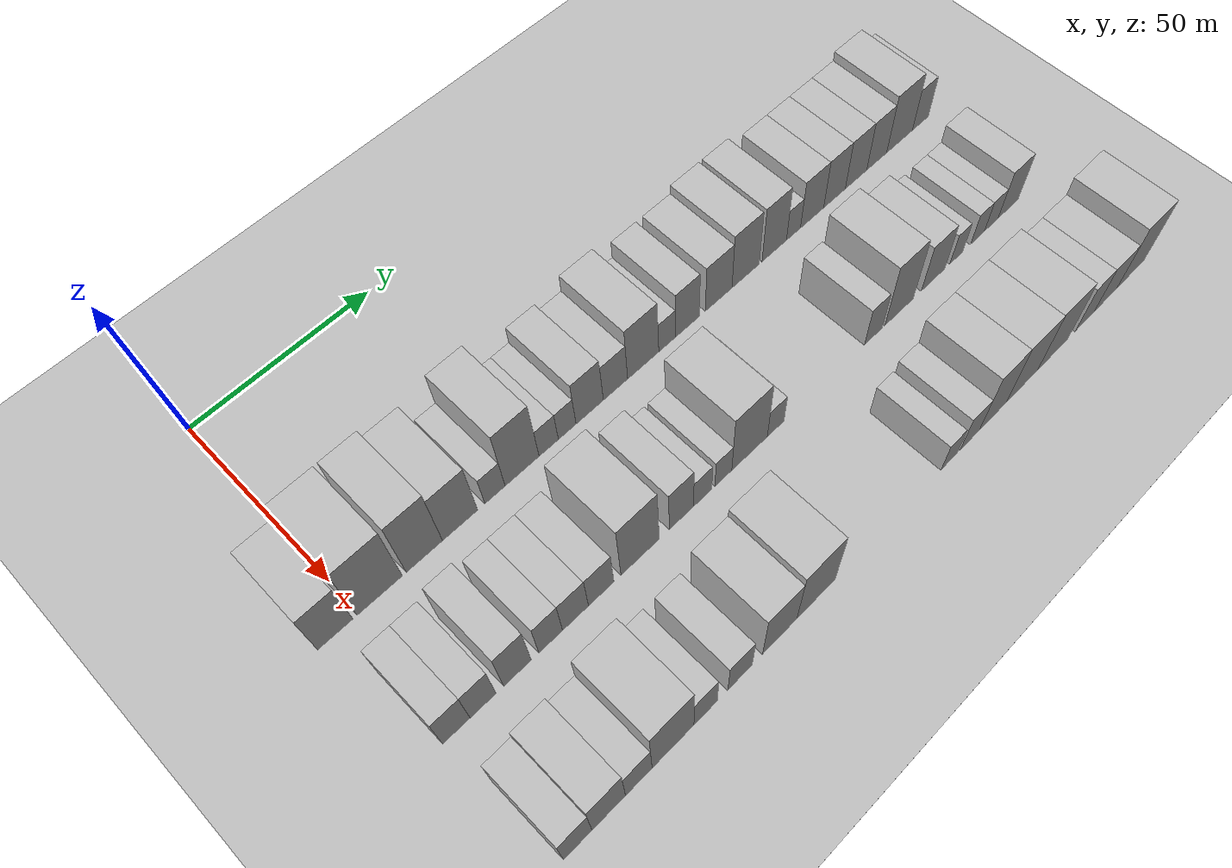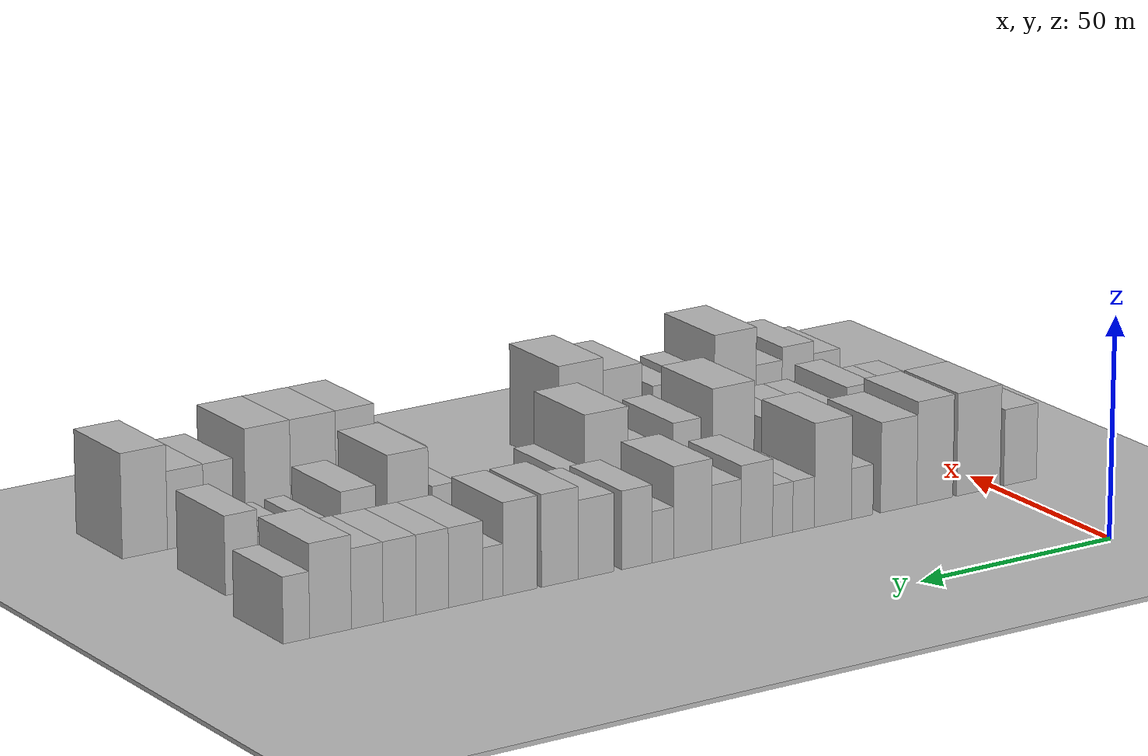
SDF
<sdf version="1.6">
 <world name="default">
  <include><name>ground_plane_1</name><uri>model://HANNAS_ground_plane</uri></include>
  <include>
   <name>ground_plane_2</name>
   <uri>model://HANNAS_ground_plane</uri>
   <pose>100 0 0  0 0 0</pose>
  </include>
  <model name="building_39">
   <static>1</static>
   <pose>50.0000 -6.0137 0 0.000000 0.000000 0.000000</pose>
   <link name="link">
    <pose>0 0 9.00 0 0 0</pose>
    <collision name="collision"><geometry><box><size>20.0000 8.9481 18.0000</size></box></geometry></collision>
    <visual name="visual">
     <cast_shadows>0</cast_shadows>
     <geometry><box><size>20.0000 8.9481 18.0000</size></box></geometry>
     <material>
      <script>
       <uri>model://HANNAS_wall/materials/scripts</uri>
       <uri>model://HANNAS_wall/materials/textures</uri>
       <name>vrc/HANNAS_wall</name>
      </script>
     </material>
    </visual>
   </link>
  </model>
  <model name="building_40">
   <static>1</static>
   <pose>50.0000 5.3758 0 0.000000 0.000000 0.000000</pose>
   <link name="link">
    <pose>0 0 12.00 0 0 0</pose>
    <collision name="collision"><geometry><box><size>20.0000 11.8308 24.0000</size></box></geometry></collision>
    <visual name="visual">
     <cast_shadows>0</cast_shadows>
     <geometry><box><size>20.0000 11.8308 24.0000</size></box></geometry>
     <material>
      <script>
       <uri>model://HANNAS_wall/materials/scripts</uri>
       <uri>model://HANNAS_wall/materials/textures</uri>
       <name>vrc/HANNAS_wall</name>
      </script>
     </material>
    </visual>
   </link>
  </model>
  <model name="building_41">
   <static>1</static>
   <pose>50.0000 17.1696 0 0.000000 0.000000 0.000000</pose>
   <link name="link">
    <pose>0 0 12.00 0 0 0</pose>
    <collision name="collision"><geometry><box><size>20.0000 9.7568 24.0000</size></box></geometry></collision>
    <visual name="visual">
     <cast_shadows>0</cast_shadows>
     <geometry><box><size>20.0000 9.7568 24.0000</size></box></geometry>
     <material>
      <script>
       <uri>model://HANNAS_wall/materials/scripts</uri>
       <uri>model://HANNAS_wall/materials/textures</uri>
       <name>vrc/HANNAS_wall</name>
      </script>
     </material>
    </visual>
   </link>
  </model>
  <model name="building_42">
   <static>1</static>
   <pose>50.0000 26.8867 0 0.000000 0.000000 0.000000</pose>
   <link name="link">
    <pose>0 0 10.50 0 0 0</pose>
    <collision name="collision"><geometry><box><size>20.0000 9.6774 21.0000</size></box></geometry></collision>
    <visual name="visual">
     <cast_shadows>0</cast_shadows>
     <geometry><box><size>20.0000 9.6774 21.0000</size></box></geometry>
     <material>
      <script>
       <uri>model://HANNAS_wall/materials/scripts</uri>
       <uri>model://HANNAS_wall/materials/textures</uri>
       <name>vrc/HANNAS_wall</name>
      </script>
     </material>
    </visual>
   </link>
  </model>
  <model name="building_43">
   <static>1</static>
   <pose>50.0000 36.5885 0 0.000000 0.000000 0.000000</pose>
   <link name="link">
    <pose>0 0 6.00 0 0 0</pose>
    <collision name="collision"><geometry><box><size>20.0000 5.7261 12.0000</size></box></geometry></collision>
    <visual name="visual">
     <cast_shadows>0</cast_shadows>
     <geometry><box><size>20.0000 5.7261 12.0000</size></box></geometry>
     <material>
      <script>
       <uri>model://HANNAS_wall/materials/scripts</uri>
       <uri>model://HANNAS_wall/materials/textures</uri>
       <name>vrc/HANNAS_wall</name>
      </script>
     </material>
    </visual>
   </link>
  </model>
  <model name="building_44">
   <static>1</static>
   <pose>50.0000 44.3513 0 0.000000 0.000000 0.000000</pose>
   <link name="link">
    <pose>0 0 12.00 0 0 0</pose>
    <collision name="collision"><geometry><box><size>20.0000 9.7996 24.0000</size></box></geometry></collision>
    <visual name="visual">
     <cast_shadows>0</cast_shadows>
     <geometry><box><size>20.0000 9.7996 24.0000</size></box></geometry>
     <material>
      <script>
       <uri>model://HANNAS_wall/materials/scripts</uri>
       <uri>model://HANNAS_wall/materials/textures</uri>
       <name>vrc/HANNAS_wall</name>
      </script>
     </material>
    </visual>
   </link>
  </model>
  <model name="building_45">
   <static>1</static>
   <pose>50.0000 52.0792 0 0.000000 0.000000 0.000000</pose>
   <link name="link">
    <pose>0 0 6.00 0 0 0</pose>
    <collision name="collision"><geometry><box><size>20.0000 5.6562 12.0000</size></box></geometry></collision>
    <visual name="visual">
     <cast_shadows>0</cast_shadows>
     <geometry><box><size>20.0000 5.6562 12.0000</size></box></geometry>
     <material>
      <script>
       <uri>model://HANNAS_wall/materials/scripts</uri>
       <uri>model://HANNAS_wall/materials/textures</uri>
       <name>vrc/HANNAS_wall</name>
      </script>
     </material>
    </visual>
   </link>
  </model>
  <model name="building_46">
   <static>1</static>
   <pose>50.0000 57.5345 0 0.000000 0.000000 0.000000</pose>
   <link name="link">
    <pose>0 0 6.00 0 0 0</pose>
    <collision name="collision"><geometry><box><size>20.0000 5.2544 12.0000</size></box></geometry></collision>
    <visual name="visual">
     <cast_shadows>0</cast_shadows>
     <geometry><box><size>20.0000 5.2544 12.0000</size></box></geometry>
     <material>
      <script>
       <uri>model://HANNAS_wall/materials/scripts</uri>
       <uri>model://HANNAS_wall/materials/textures</uri>
       <name>vrc/HANNAS_wall</name>
      </script>
     </material>
    </visual>
   </link>
  </model>
  <model name="building_47">
   <static>1</static>
   <pose>50.0000 64.3041 0 0.000000 0.000000 0.000000</pose>
   <link name="link">
    <pose>0 0 9.00 0 0 0</pose>
    <collision name="collision"><geometry><box><size>20.0000 8.2847 18.0000</size></box></geometry></collision>
    <visual name="visual">
     <cast_shadows>0</cast_shadows>
     <geometry><box><size>20.0000 8.2847 18.0000</size></box></geometry>
     <material>
      <script>
       <uri>model://HANNAS_wall/materials/scripts</uri>
       <uri>model://HANNAS_wall/materials/textures</uri>
       <name>vrc/HANNAS_wall</name>
      </script>
     </material>
    </visual>
   </link>
  </model>
  <model name="building_48">
   <static>1</static>
   <pose>50.0000 72.1929 0 0.000000 0.000000 0.000000</pose>
   <link name="link">
    <pose>0 0 7.50 0 0 0</pose>
    <collision name="collision"><geometry><box><size>20.0000 7.4929 15.0000</size></box></geometry></collision>
    <visual name="visual">
     <cast_shadows>0</cast_shadows>
     <geometry><box><size>20.0000 7.4929 15.0000</size></box></geometry>
     <material>
      <script>
       <uri>model://HANNAS_wall/materials/scripts</uri>
       <uri>model://HANNAS_wall/materials/textures</uri>
       <name>vrc/HANNAS_wall</name>
      </script>
     </material>
    </visual>
   </link>
  </model>
  <model name="building_49">
   <static>1</static>
   <pose>50.0000 80.8568 0 0.000000 0.000000 0.000000</pose>
   <link name="link">
    <pose>0 0 10.50 0 0 0</pose>
    <collision name="collision"><geometry><box><size>20.0000 9.8349 21.0000</size></box></geometry></collision>
    <visual name="visual">
     <cast_shadows>0</cast_shadows>
     <geometry><box><size>20.0000 9.8349 21.0000</size></box></geometry>
     <material>
      <script>
       <uri>model://HANNAS_wall/materials/scripts</uri>
       <uri>model://HANNAS_wall/materials/textures</uri>
       <name>vrc/HANNAS_wall</name>
      </script>
     </material>
    </visual>
   </link>
  </model>
  <model name="building_50">
   <static>1</static>
   <pose>50.0000 88.4954 0 0.000000 0.000000 0.000000</pose>
   <link name="link">
    <pose>0 0 6.00 0 0 0</pose>
    <collision name="collision"><geometry><box><size>20.0000 5.4423 12.0000</size></box></geometry></collision>
    <visual name="visual">
     <cast_shadows>0</cast_shadows>
     <geometry><box><size>20.0000 5.4423 12.0000</size></box></geometry>
     <material>
      <script>
       <uri>model://HANNAS_wall/materials/scripts</uri>
       <uri>model://HANNAS_wall/materials/textures</uri>
       <name>vrc/HANNAS_wall</name>
      </script>
     </material>
    </visual>
   </link>
  </model>
  <model name="building_51">
   <static>1</static>
   <pose>50.0000 95.0807 0 0.000000 0.000000 0.000000</pose>
   <link name="link">
    <pose>0 0 9.00 0 0 0</pose>
    <collision name="collision"><geometry><box><size>20.0000 7.7284 18.0000</size></box></geometry></collision>
    <visual name="visual">
     <cast_shadows>0</cast_shadows>
     <geometry><box><size>20.0000 7.7284 18.0000</size></box></geometry>
     <material>
      <script>
       <uri>model://HANNAS_wall/materials/scripts</uri>
       <uri>model://HANNAS_wall/materials/textures</uri>
       <name>vrc/HANNAS_wall</name>
      </script>
     </material>
    </visual>
   </link>
  </model>
  <model name="building_52">
   <static>1</static>
   <pose>50.0000 105.3927 0 0.000000 0.000000 0.000000</pose>
   <link name="link">
    <pose>0 0 9.00 0 0 0</pose>
    <collision name="collision"><geometry><box><size>20.0000 8.8955 18.0000</size></box></geometry></collision>
    <visual name="visual">
     <cast_shadows>0</cast_shadows>
     <geometry><box><size>20.0000 8.8955 18.0000</size></box></geometry>
     <material>
      <script>
       <uri>model://HANNAS_wall/materials/scripts</uri>
       <uri>model://HANNAS_wall/materials/textures</uri>
       <name>vrc/HANNAS_wall</name>
      </script>
     </material>
    </visual>
   </link>
  </model>
  <model name="building_53">
   <static>1</static>
   <pose>50.0000 114.4817 0 0.000000 0.000000 0.000000</pose>
   <link name="link">
    <pose>0 0 10.50 0 0 0</pose>
    <collision name="collision"><geometry><box><size>20.0000 9.2826 21.0000</size></box></geometry></collision>
    <visual name="visual">
     <cast_shadows>0</cast_shadows>
     <geometry><box><size>20.0000 9.2826 21.0000</size></box></geometry>
     <material>
      <script>
       <uri>model://HANNAS_wall/materials/scripts</uri>
       <uri>model://HANNAS_wall/materials/textures</uri>
       <name>vrc/HANNAS_wall</name>
      </script>
     </material>
    </visual>
   </link>
  </model>
  <model name="building_54">
   <static>1</static>
   <pose>50.0000 124.3876 0 0.000000 0.000000 0.000000</pose>
   <link name="link">
    <pose>0 0 10.50 0 0 0</pose>
    <collision name="collision"><geometry><box><size>20.0000 8.5292 21.0000</size></box></geometry></collision>
    <visual name="visual">
     <cast_shadows>0</cast_shadows>
     <geometry><box><size>20.0000 8.5292 21.0000</size></box></geometry>
     <material>
      <script>
       <uri>model://HANNAS_wall/materials/scripts</uri>
       <uri>model://HANNAS_wall/materials/textures</uri>
       <name>vrc/HANNAS_wall</name>
      </script>
     </material>
    </visual>
   </link>
  </model>
  <model name="building_55">
   <static>1</static>
   <pose>50.0000 131.1582 0 0.000000 0.000000 0.000000</pose>
   <link name="link">
    <pose>0 0 6.00 0 0 0</pose>
    <collision name="collision"><geometry><box><size>20.0000 5.0120 12.0000</size></box></geometry></collision>
    <visual name="visual">
     <cast_shadows>0</cast_shadows>
     <geometry><box><size>20.0000 5.0120 12.0000</size></box></geometry>
     <material>
      <script>
       <uri>model://HANNAS_wall/materials/scripts</uri>
       <uri>model://HANNAS_wall/materials/textures</uri>
       <name>vrc/HANNAS_wall</name>
      </script>
     </material>
    </visual>
   </link>
  </model>
  <model name="building_56">
   <static>1</static>
   <pose>50.0000 137.8611 0 0.000000 0.000000 0.000000</pose>
   <link name="link">
    <pose>0 0 9.00 0 0 0</pose>
    <collision name="collision"><geometry><box><size>20.0000 8.3937 18.0000</size></box></geometry></collision>
    <visual name="visual">
     <cast_shadows>0</cast_shadows>
     <geometry><box><size>20.0000 8.3937 18.0000</size></box></geometry>
     <material>
      <script>
       <uri>model://HANNAS_wall/materials/scripts</uri>
       <uri>model://HANNAS_wall/materials/textures</uri>
       <name>vrc/HANNAS_wall</name>
      </script>
     </material>
    </visual>
   </link>
  </model>
  <model name="building_57">
   <static>1</static>
   <pose>50.0000 146.0244 0 0.000000 0.000000 0.000000</pose>
   <link name="link">
    <pose>0 0 9.00 0 0 0</pose>
    <collision name="collision"><geometry><box><size>20.0000 7.9328 18.0000</size></box></geometry></collision>
    <visual name="visual">
     <cast_shadows>0</cast_shadows>
     <geometry><box><size>20.0000 7.9328 18.0000</size></box></geometry>
     <material>
      <script>
       <uri>model://HANNAS_wall/materials/scripts</uri>
       <uri>model://HANNAS_wall/materials/textures</uri>
       <name>vrc/HANNAS_wall</name>
      </script>
     </material>
    </visual>
   </link>
  </model>
  <model name="building_58">
   <static>1</static>
   <pose>50.0000 154.0125 0 0.000000 0.000000 0.000000</pose>
   <link name="link">
    <pose>0 0 9.00 0 0 0</pose>
    <collision name="collision"><geometry><box><size>20.0000 8.0436 18.0000</size></box></geometry></collision>
    <visual name="visual">
     <cast_shadows>0</cast_shadows>
     <geometry><box><size>20.0000 8.0436 18.0000</size></box></geometry>
     <material>
      <script>
       <uri>model://HANNAS_wall/materials/scripts</uri>
       <uri>model://HANNAS_wall/materials/textures</uri>
       <name>vrc/HANNAS_wall</name>
      </script>
     </material>
    </visual>
   </link>
  </model>
  <model name="building_59">
   <static>1</static>
   <pose>50.0000 161.8453 0 0.000000 0.000000 0.000000</pose>
   <link name="link">
    <pose>0 0 9.00 0 0 0</pose>
    <collision name="collision"><geometry><box><size>20.0000 7.6220 18.0000</size></box></geometry></collision>
    <visual name="visual">
     <cast_shadows>0</cast_shadows>
     <geometry><box><size>20.0000 7.6220 18.0000</size></box></geometry>
     <material>
      <script>
       <uri>model://HANNAS_wall/materials/scripts</uri>
       <uri>model://HANNAS_wall/materials/textures</uri>
       <name>vrc/HANNAS_wall</name>
      </script>
     </material>
    </visual>
   </link>
  </model>
  <model name="building_60">
   <static>1</static>
   <pose>50.0000 170.6607 0 0.000000 0.000000 0.000000</pose>
   <link name="link">
    <pose>0 0 10.50 0 0 0</pose>
    <collision name="collision"><geometry><box><size>20.0000 10.0088 21.0000</size></box></geometry></collision>
    <visual name="visual">
     <cast_shadows>0</cast_shadows>
     <geometry><box><size>20.0000 10.0088 21.0000</size></box></geometry>
     <material>
      <script>
       <uri>model://HANNAS_wall/materials/scripts</uri>
       <uri>model://HANNAS_wall/materials/textures</uri>
       <name>vrc/HANNAS_wall</name>
      </script>
     </material>
    </visual>
   </link>
  </model>
  <model name="building_61">
   <static>1</static>
   <pose>50.0000 178.8220 0 0.000000 0.000000 0.000000</pose>
   <link name="link">
    <pose>0 0 7.50 0 0 0</pose>
    <collision name="collision"><geometry><box><size>20.0000 6.3137 15.0000</size></box></geometry></collision>
    <visual name="visual">
     <cast_shadows>0</cast_shadows>
     <geometry><box><size>20.0000 6.3137 15.0000</size></box></geometry>
     <material>
      <script>
       <uri>model://HANNAS_wall/materials/scripts</uri>
       <uri>model://HANNAS_wall/materials/textures</uri>
       <name>vrc/HANNAS_wall</name>
      </script>
     </material>
    </visual>
   </link>
  </model>
  <model name="building_119">
   <static>1</static>
   <pose>82.0000 -1.4849 0 0.000000 0.000000 0.000000</pose>
   <link name="link">
    <pose>0 0 7.50 0 0 0</pose>
    <collision name="collision"><geometry><box><size>20.0000 6.9554 15.0000</size></box></geometry></collision>
    <visual name="visual">
     <cast_shadows>0</cast_shadows>
     <geometry><box><size>20.0000 6.9554 15.0000</size></box></geometry>
     <material>
      <script>
       <uri>model://HANNAS_wall/materials/scripts</uri>
       <uri>model://HANNAS_wall/materials/textures</uri>
       <name>vrc/HANNAS_wall</name>
      </script>
     </material>
    </visual>
   </link>
  </model>
  <model name="building_120">
   <static>1</static>
   <pose>82.0000 5.3560 0 0.000000 0.000000 0.000000</pose>
   <link name="link">
    <pose>0 0 7.50 0 0 0</pose>
    <collision name="collision"><geometry><box><size>20.0000 6.7263 15.0000</size></box></geometry></collision>
    <visual name="visual">
     <cast_shadows>0</cast_shadows>
     <geometry><box><size>20.0000 6.7263 15.0000</size></box></geometry>
     <material>
      <script>
       <uri>model://HANNAS_wall/materials/scripts</uri>
       <uri>model://HANNAS_wall/materials/textures</uri>
       <name>vrc/HANNAS_wall</name>
      </script>
     </material>
    </visual>
   </link>
  </model>
  <model name="building_121">
   <static>1</static>
   <pose>82.0000 14.3799 0 0.000000 0.000000 0.000000</pose>
   <link name="link">
    <pose>0 0 9.00 0 0 0</pose>
    <collision name="collision"><geometry><box><size>20.0000 7.3216 18.0000</size></box></geometry></collision>
    <visual name="visual">
     <cast_shadows>0</cast_shadows>
     <geometry><box><size>20.0000 7.3216 18.0000</size></box></geometry>
     <material>
      <script>
       <uri>model://HANNAS_wall/materials/scripts</uri>
       <uri>model://HANNAS_wall/materials/textures</uri>
       <name>vrc/HANNAS_wall</name>
      </script>
     </material>
    </visual>
   </link>
  </model>
  <model name="building_122">
   <static>1</static>
   <pose>82.0000 23.2669 0 0.000000 0.000000 0.000000</pose>
   <link name="link">
    <pose>0 0 7.50 0 0 0</pose>
    <collision name="collision"><geometry><box><size>20.0000 6.4522 15.0000</size></box></geometry></collision>
    <visual name="visual">
     <cast_shadows>0</cast_shadows>
     <geometry><box><size>20.0000 6.4522 15.0000</size></box></geometry>
     <material>
      <script>
       <uri>model://HANNAS_wall/materials/scripts</uri>
       <uri>model://HANNAS_wall/materials/textures</uri>
       <name>vrc/HANNAS_wall</name>
      </script>
     </material>
    </visual>
   </link>
  </model>
  <model name="building_123">
   <static>1</static>
   <pose>82.0000 30.0730 0 0.000000 0.000000 0.000000</pose>
   <link name="link">
    <pose>0 0 7.50 0 0 0</pose>
    <collision name="collision"><geometry><box><size>20.0000 7.1601 15.0000</size></box></geometry></collision>
    <visual name="visual">
     <cast_shadows>0</cast_shadows>
     <geometry><box><size>20.0000 7.1601 15.0000</size></box></geometry>
     <material>
      <script>
       <uri>model://HANNAS_wall/materials/scripts</uri>
       <uri>model://HANNAS_wall/materials/textures</uri>
       <name>vrc/HANNAS_wall</name>
      </script>
     </material>
    </visual>
   </link>
  </model>
  <model name="building_124">
   <static>1</static>
   <pose>82.0000 37.2487 0 0.000000 0.000000 0.000000</pose>
   <link name="link">
    <pose>0 0 7.50 0 0 0</pose>
    <collision name="collision"><geometry><box><size>20.0000 7.1914 15.0000</size></box></geometry></collision>
    <visual name="visual">
     <cast_shadows>0</cast_shadows>
     <geometry><box><size>20.0000 7.1914 15.0000</size></box></geometry>
     <material>
      <script>
       <uri>model://HANNAS_wall/materials/scripts</uri>
       <uri>model://HANNAS_wall/materials/textures</uri>
       <name>vrc/HANNAS_wall</name>
      </script>
     </material>
    </visual>
   </link>
  </model>
  <model name="building_125">
   <static>1</static>
   <pose>82.0000 48.4022 0 0.000000 0.000000 0.000000</pose>
   <link name="link">
    <pose>0 0 12.00 0 0 0</pose>
    <collision name="collision"><geometry><box><size>20.0000 11.1156 24.0000</size></box></geometry></collision>
    <visual name="visual">
     <cast_shadows>0</cast_shadows>
     <geometry><box><size>20.0000 11.1156 24.0000</size></box></geometry>
     <material>
      <script>
       <uri>model://HANNAS_wall/materials/scripts</uri>
       <uri>model://HANNAS_wall/materials/textures</uri>
       <name>vrc/HANNAS_wall</name>
      </script>
     </material>
    </visual>
   </link>
  </model>
  <model name="building_126">
   <static>1</static>
   <pose>82.0000 60.5948 0 0.000000 0.000000 0.000000</pose>
   <link name="link">
    <pose>0 0 9.00 0 0 0</pose>
    <collision name="collision"><geometry><box><size>20.0000 7.2695 18.0000</size></box></geometry></collision>
    <visual name="visual">
     <cast_shadows>0</cast_shadows>
     <geometry><box><size>20.0000 7.2695 18.0000</size></box></geometry>
     <material>
      <script>
       <uri>model://HANNAS_wall/materials/scripts</uri>
       <uri>model://HANNAS_wall/materials/textures</uri>
       <name>vrc/HANNAS_wall</name>
      </script>
     </material>
    </visual>
   </link>
  </model>
  <model name="building_127">
   <static>1</static>
   <pose>82.0000 66.9884 0 0.000000 0.000000 0.000000</pose>
   <link name="link">
    <pose>0 0 6.00 0 0 0</pose>
    <collision name="collision"><geometry><box><size>20.0000 5.5177 12.0000</size></box></geometry></collision>
    <visual name="visual">
     <cast_shadows>0</cast_shadows>
     <geometry><box><size>20.0000 5.5177 12.0000</size></box></geometry>
     <material>
      <script>
       <uri>model://HANNAS_wall/materials/scripts</uri>
       <uri>model://HANNAS_wall/materials/textures</uri>
       <name>vrc/HANNAS_wall</name>
      </script>
     </material>
    </visual>
   </link>
  </model>
  <model name="building_128">
   <static>1</static>
   <pose>82.0000 73.3599 0 0.000000 0.000000 0.000000</pose>
   <link name="link">
    <pose>0 0 6.00 0 0 0</pose>
    <collision name="collision"><geometry><box><size>20.0000 5.2254 12.0000</size></box></geometry></collision>
    <visual name="visual">
     <cast_shadows>0</cast_shadows>
     <geometry><box><size>20.0000 5.2254 12.0000</size></box></geometry>
     <material>
      <script>
       <uri>model://HANNAS_wall/materials/scripts</uri>
       <uri>model://HANNAS_wall/materials/textures</uri>
       <name>vrc/HANNAS_wall</name>
      </script>
     </material>
    </visual>
   </link>
  </model>
  <model name="building_129">
   <static>1</static>
   <pose>82.0000 81.5929 0 0.000000 0.000000 0.000000</pose>
   <link name="link">
    <pose>0 0 12.00 0 0 0</pose>
    <collision name="collision"><geometry><box><size>20.0000 11.2406 24.0000</size></box></geometry></collision>
    <visual name="visual">
     <cast_shadows>0</cast_shadows>
     <geometry><box><size>20.0000 11.2406 24.0000</size></box></geometry>
     <material>
      <script>
       <uri>model://HANNAS_wall/materials/scripts</uri>
       <uri>model://HANNAS_wall/materials/textures</uri>
       <name>vrc/HANNAS_wall</name>
      </script>
     </material>
    </visual>
   </link>
  </model>
  <model name="building_130">
   <static>1</static>
   <pose>82.0000 89.9076 0 0.000000 0.000000 0.000000</pose>
   <link name="link">
    <pose>0 0 6.00 0 0 0</pose>
    <collision name="collision"><geometry><box><size>20.0000 5.3887 12.0000</size></box></geometry></collision>
    <visual name="visual">
     <cast_shadows>0</cast_shadows>
     <geometry><box><size>20.0000 5.3887 12.0000</size></box></geometry>
     <material>
      <script>
       <uri>model://HANNAS_wall/materials/scripts</uri>
       <uri>model://HANNAS_wall/materials/textures</uri>
       <name>vrc/HANNAS_wall</name>
      </script>
     </material>
    </visual>
   </link>
  </model>
  <model name="building_131">
   <static>1</static>
   <pose>82.0000 122.8344 0 0.000000 0.000000 0.000000</pose>
   <link name="link">
    <pose>0 0 7.50 0 0 0</pose>
    <collision name="collision"><geometry><box><size>20.0000 6.1550 15.0000</size></box></geometry></collision>
    <visual name="visual">
     <cast_shadows>0</cast_shadows>
     <geometry><box><size>20.0000 6.1550 15.0000</size></box></geometry>
     <material>
      <script>
       <uri>model://HANNAS_wall/materials/scripts</uri>
       <uri>model://HANNAS_wall/materials/textures</uri>
       <name>vrc/HANNAS_wall</name>
      </script>
     </material>
    </visual>
   </link>
  </model>
  <model name="building_132">
   <static>1</static>
   <pose>82.0000 131.9867 0 0.000000 0.000000 0.000000</pose>
   <link name="link">
    <pose>0 0 12.00 0 0 0</pose>
    <collision name="collision"><geometry><box><size>20.0000 10.1495 24.0000</size></box></geometry></collision>
    <visual name="visual">
     <cast_shadows>0</cast_shadows>
     <geometry><box><size>20.0000 10.1495 24.0000</size></box></geometry>
     <material>
      <script>
       <uri>model://HANNAS_wall/materials/scripts</uri>
       <uri>model://HANNAS_wall/materials/textures</uri>
       <name>vrc/HANNAS_wall</name>
      </script>
     </material>
    </visual>
   </link>
  </model>
  <model name="building_133">
   <static>1</static>
   <pose>82.0000 144.3353 0 0.000000 0.000000 0.000000</pose>
   <link name="link">
    <pose>0 0 9.00 0 0 0</pose>
    <collision name="collision"><geometry><box><size>20.0000 8.5478 18.0000</size></box></geometry></collision>
    <visual name="visual">
     <cast_shadows>0</cast_shadows>
     <geometry><box><size>20.0000 8.5478 18.0000</size></box></geometry>
     <material>
      <script>
       <uri>model://HANNAS_wall/materials/scripts</uri>
       <uri>model://HANNAS_wall/materials/textures</uri>
       <name>vrc/HANNAS_wall</name>
      </script>
     </material>
    </visual>
   </link>
  </model>
  <model name="building_134">
   <static>1</static>
   <pose>82.0000 153.0252 0 0.000000 0.000000 0.000000</pose>
   <link name="link">
    <pose>0 0 6.00 0 0 0</pose>
    <collision name="collision"><geometry><box><size>20.0000 4.8319 12.0000</size></box></geometry></collision>
    <visual name="visual">
     <cast_shadows>0</cast_shadows>
     <geometry><box><size>20.0000 4.8319 12.0000</size></box></geometry>
     <material>
      <script>
       <uri>model://HANNAS_wall/materials/scripts</uri>
       <uri>model://HANNAS_wall/materials/textures</uri>
       <name>vrc/HANNAS_wall</name>
      </script>
     </material>
    </visual>
   </link>
  </model>
  <model name="building_135">
   <static>1</static>
   <pose>82.0000 161.0836 0 0.000000 0.000000 0.000000</pose>
   <link name="link">
    <pose>0 0 6.00 0 0 0</pose>
    <collision name="collision"><geometry><box><size>20.0000 5.2851 12.0000</size></box></geometry></collision>
    <visual name="visual">
     <cast_shadows>0</cast_shadows>
     <geometry><box><size>20.0000 5.2851 12.0000</size></box></geometry>
     <material>
      <script>
       <uri>model://HANNAS_wall/materials/scripts</uri>
       <uri>model://HANNAS_wall/materials/textures</uri>
       <name>vrc/HANNAS_wall</name>
      </script>
     </material>
    </visual>
   </link>
  </model>
  <model name="building_136">
   <static>1</static>
   <pose>82.0000 166.3696 0 0.000000 0.000000 0.000000</pose>
   <link name="link">
    <pose>0 0 6.00 0 0 0</pose>
    <collision name="collision"><geometry><box><size>20.0000 5.2869 12.0000</size></box></geometry></collision>
    <visual name="visual">
     <cast_shadows>0</cast_shadows>
     <geometry><box><size>20.0000 5.2869 12.0000</size></box></geometry>
     <material>
      <script>
       <uri>model://HANNAS_wall/materials/scripts</uri>
       <uri>model://HANNAS_wall/materials/textures</uri>
       <name>vrc/HANNAS_wall</name>
      </script>
     </material>
    </visual>
   </link>
  </model>
  <model name="building_137">
   <static>1</static>
   <pose>82.0000 172.9690 0 0.000000 0.000000 0.000000</pose>
   <link name="link">
    <pose>0 0 9.00 0 0 0</pose>
    <collision name="collision"><geometry><box><size>20.0000 7.9118 18.0000</size></box></geometry></collision>
    <visual name="visual">
     <cast_shadows>0</cast_shadows>
     <geometry><box><size>20.0000 7.9118 18.0000</size></box></geometry>
     <material>
      <script>
       <uri>model://HANNAS_wall/materials/scripts</uri>
       <uri>model://HANNAS_wall/materials/textures</uri>
       <name>vrc/HANNAS_wall</name>
      </script>
     </material>
    </visual>
   </link>
  </model>
  <model name="building_197">
   <static>1</static>
   <pose>114.0000 0.6893 0 0.000000 0.000000 0.000000</pose>
   <link name="link">
    <pose>0 0 7.50 0 0 0</pose>
    <collision name="collision"><geometry><box><size>20.0000 7.2675 15.0000</size></box></geometry></collision>
    <visual name="visual">
     <cast_shadows>0</cast_shadows>
     <geometry><box><size>20.0000 7.2675 15.0000</size></box></geometry>
     <material>
      <script>
       <uri>model://HANNAS_wall/materials/scripts</uri>
       <uri>model://HANNAS_wall/materials/textures</uri>
       <name>vrc/HANNAS_wall</name>
      </script>
     </material>
    </visual>
   </link>
  </model>
  <model name="building_198">
   <static>1</static>
   <pose>114.0000 8.6701 0 0.000000 0.000000 0.000000</pose>
   <link name="link">
    <pose>0 0 9.00 0 0 0</pose>
    <collision name="collision"><geometry><box><size>20.0000 8.6940 18.0000</size></box></geometry></collision>
    <visual name="visual">
     <cast_shadows>0</cast_shadows>
     <geometry><box><size>20.0000 8.6940 18.0000</size></box></geometry>
     <material>
      <script>
       <uri>model://HANNAS_wall/materials/scripts</uri>
       <uri>model://HANNAS_wall/materials/textures</uri>
       <name>vrc/HANNAS_wall</name>
      </script>
     </material>
    </visual>
   </link>
  </model>
  <model name="building_199">
   <static>1</static>
   <pose>114.0000 16.5614 0 0.000000 0.000000 0.000000</pose>
   <link name="link">
    <pose>0 0 7.50 0 0 0</pose>
    <collision name="collision"><geometry><box><size>20.0000 7.0887 15.0000</size></box></geometry></collision>
    <visual name="visual">
     <cast_shadows>0</cast_shadows>
     <geometry><box><size>20.0000 7.0887 15.0000</size></box></geometry>
     <material>
      <script>
       <uri>model://HANNAS_wall/materials/scripts</uri>
       <uri>model://HANNAS_wall/materials/textures</uri>
       <name>vrc/HANNAS_wall</name>
      </script>
     </material>
    </visual>
   </link>
  </model>
  <model name="building_200">
   <static>1</static>
   <pose>114.0000 25.7999 0 0.000000 0.000000 0.000000</pose>
   <link name="link">
    <pose>0 0 12.00 0 0 0</pose>
    <collision name="collision"><geometry><box><size>20.0000 11.3883 24.0000</size></box></geometry></collision>
    <visual name="visual">
     <cast_shadows>0</cast_shadows>
     <geometry><box><size>20.0000 11.3883 24.0000</size></box></geometry>
     <material>
      <script>
       <uri>model://HANNAS_wall/materials/scripts</uri>
       <uri>model://HANNAS_wall/materials/textures</uri>
       <name>vrc/HANNAS_wall</name>
      </script>
     </material>
    </visual>
   </link>
  </model>
  <model name="building_201">
   <static>1</static>
   <pose>114.0000 34.7653 0 0.000000 0.000000 0.000000</pose>
   <link name="link">
    <pose>0 0 7.50 0 0 0</pose>
    <collision name="collision"><geometry><box><size>20.0000 6.5426 15.0000</size></box></geometry></collision>
    <visual name="visual">
     <cast_shadows>0</cast_shadows>
     <geometry><box><size>20.0000 6.5426 15.0000</size></box></geometry>
     <material>
      <script>
       <uri>model://HANNAS_wall/materials/scripts</uri>
       <uri>model://HANNAS_wall/materials/textures</uri>
       <name>vrc/HANNAS_wall</name>
      </script>
     </material>
    </visual>
   </link>
  </model>
  <model name="building_202">
   <static>1</static>
   <pose>114.0000 44.5525 0 0.000000 0.000000 0.000000</pose>
   <link name="link">
    <pose>0 0 7.50 0 0 0</pose>
    <collision name="collision"><geometry><box><size>20.0000 7.0318 15.0000</size></box></geometry></collision>
    <visual name="visual">
     <cast_shadows>0</cast_shadows>
     <geometry><box><size>20.0000 7.0318 15.0000</size></box></geometry>
     <material>
      <script>
       <uri>model://HANNAS_wall/materials/scripts</uri>
       <uri>model://HANNAS_wall/materials/textures</uri>
       <name>vrc/HANNAS_wall</name>
      </script>
     </material>
    </visual>
   </link>
  </model>
  <model name="building_203">
   <static>1</static>
   <pose>114.0000 56.1755 0 0.000000 0.000000 0.000000</pose>
   <link name="link">
    <pose>0 0 10.50 0 0 0</pose>
    <collision name="collision"><geometry><box><size>20.0000 10.2142 21.0000</size></box></geometry></collision>
    <visual name="visual">
     <cast_shadows>0</cast_shadows>
     <geometry><box><size>20.0000 10.2142 21.0000</size></box></geometry>
     <material>
      <script>
       <uri>model://HANNAS_wall/materials/scripts</uri>
       <uri>model://HANNAS_wall/materials/textures</uri>
       <name>vrc/HANNAS_wall</name>
      </script>
     </material>
    </visual>
   </link>
  </model>
  <model name="building_204">
   <static>1</static>
   <pose>114.0000 67.1603 0 0.000000 0.000000 0.000000</pose>
   <link name="link">
    <pose>0 0 12.00 0 0 0</pose>
    <collision name="collision"><geometry><box><size>20.0000 11.7555 24.0000</size></box></geometry></collision>
    <visual name="visual">
     <cast_shadows>0</cast_shadows>
     <geometry><box><size>20.0000 11.7555 24.0000</size></box></geometry>
     <material>
      <script>
       <uri>model://HANNAS_wall/materials/scripts</uri>
       <uri>model://HANNAS_wall/materials/textures</uri>
       <name>vrc/HANNAS_wall</name>
      </script>
     </material>
    </visual>
   </link>
  </model>
  <model name="building_205">
   <static>1</static>
   <pose>114.0000 110.3089 0 0.000000 0.000000 0.000000</pose>
   <link name="link">
    <pose>0 0 6.00 0 0 0</pose>
    <collision name="collision"><geometry><box><size>20.0000 5.5139 12.0000</size></box></geometry></collision>
    <visual name="visual">
     <cast_shadows>0</cast_shadows>
     <geometry><box><size>20.0000 5.5139 12.0000</size></box></geometry>
     <material>
      <script>
       <uri>model://HANNAS_wall/materials/scripts</uri>
       <uri>model://HANNAS_wall/materials/textures</uri>
       <name>vrc/HANNAS_wall</name>
      </script>
     </material>
    </visual>
   </link>
  </model>
  <model name="building_206">
   <static>1</static>
   <pose>114.0000 117.3998 0 0.000000 0.000000 0.000000</pose>
   <link name="link">
    <pose>0 0 7.50 0 0 0</pose>
    <collision name="collision"><geometry><box><size>20.0000 6.6678 15.0000</size></box></geometry></collision>
    <visual name="visual">
     <cast_shadows>0</cast_shadows>
     <geometry><box><size>20.0000 6.6678 15.0000</size></box></geometry>
     <material>
      <script>
       <uri>model://HANNAS_wall/materials/scripts</uri>
       <uri>model://HANNAS_wall/materials/textures</uri>
       <name>vrc/HANNAS_wall</name>
      </script>
     </material>
    </visual>
   </link>
  </model>
  <model name="building_207">
   <static>1</static>
   <pose>114.0000 125.5999 0 0.000000 0.000000 0.000000</pose>
   <link name="link">
    <pose>0 0 12.00 0 0 0</pose>
    <collision name="collision"><geometry><box><size>20.0000 9.7323 24.0000</size></box></geometry></collision>
    <visual name="visual">
     <cast_shadows>0</cast_shadows>
     <geometry><box><size>20.0000 9.7323 24.0000</size></box></geometry>
     <material>
      <script>
       <uri>model://HANNAS_wall/materials/scripts</uri>
       <uri>model://HANNAS_wall/materials/textures</uri>
       <name>vrc/HANNAS_wall</name>
      </script>
     </material>
    </visual>
   </link>
  </model>
  <model name="building_208">
   <static>1</static>
   <pose>114.0000 136.1653 0 0.000000 0.000000 0.000000</pose>
   <link name="link">
    <pose>0 0 12.00 0 0 0</pose>
    <collision name="collision"><geometry><box><size>20.0000 11.3986 24.0000</size></box></geometry></collision>
    <visual name="visual">
     <cast_shadows>0</cast_shadows>
     <geometry><box><size>20.0000 11.3986 24.0000</size></box></geometry>
     <material>
      <script>
       <uri>model://HANNAS_wall/materials/scripts</uri>
       <uri>model://HANNAS_wall/materials/textures</uri>
       <name>vrc/HANNAS_wall</name>
      </script>
     </material>
    </visual>
   </link>
  </model>
  <model name="building_209">
   <static>1</static>
   <pose>114.0000 147.5207 0 0.000000 0.000000 0.000000</pose>
   <link name="link">
    <pose>0 0 12.00 0 0 0</pose>
    <collision name="collision"><geometry><box><size>20.0000 11.3123 24.0000</size></box></geometry></collision>
    <visual name="visual">
     <cast_shadows>0</cast_shadows>
     <geometry><box><size>20.0000 11.3123 24.0000</size></box></geometry>
     <material>
      <script>
       <uri>model://HANNAS_wall/materials/scripts</uri>
       <uri>model://HANNAS_wall/materials/textures</uri>
       <name>vrc/HANNAS_wall</name>
      </script>
     </material>
    </visual>
   </link>
  </model>
  <model name="building_210">
   <static>1</static>
   <pose>114.0000 159.8258 0 0.000000 0.000000 0.000000</pose>
   <link name="link">
    <pose>0 0 9.00 0 0 0</pose>
    <collision name="collision"><geometry><box><size>20.0000 7.2979 18.0000</size></box></geometry></collision>
    <visual name="visual">
     <cast_shadows>0</cast_shadows>
     <geometry><box><size>20.0000 7.2979 18.0000</size></box></geometry>
     <material>
      <script>
       <uri>model://HANNAS_wall/materials/scripts</uri>
       <uri>model://HANNAS_wall/materials/textures</uri>
       <name>vrc/HANNAS_wall</name>
      </script>
     </material>
    </visual>
   </link>
  </model>
  <model name="building_211">
   <static>1</static>
   <pose>114.0000 167.9536 0 0.000000 0.000000 0.000000</pose>
   <link name="link">
    <pose>0 0 9.00 0 0 0</pose>
    <collision name="collision"><geometry><box><size>20.0000 8.9576 18.0000</size></box></geometry></collision>
    <visual name="visual">
     <cast_shadows>0</cast_shadows>
     <geometry><box><size>20.0000 8.9576 18.0000</size></box></geometry>
     <material>
      <script>
       <uri>model://HANNAS_wall/materials/scripts</uri>
       <uri>model://HANNAS_wall/materials/textures</uri>
       <name>vrc/HANNAS_wall</name>
      </script>
     </material>
    </visual>
   </link>
  </model>
  <model name="building_212">
   <static>1</static>
   <pose>114.0000 177.9556 0 0.000000 0.000000 0.000000</pose>
   <link name="link">
    <pose>0 0 12.00 0 0 0</pose>
    <collision name="collision"><geometry><box><size>20.0000 11.0464 24.0000</size></box></geometry></collision>
    <visual name="visual">
     <cast_shadows>0</cast_shadows>
     <geometry><box><size>20.0000 11.0464 24.0000</size></box></geometry>
     <material>
      <script>
       <uri>model://HANNAS_wall/materials/scripts</uri>
       <uri>model://HANNAS_wall/materials/textures</uri>
       <name>vrc/HANNAS_wall</name>
      </script>
     </material>
    </visual>
   </link>
  </model>
 </world>
</sdf>
